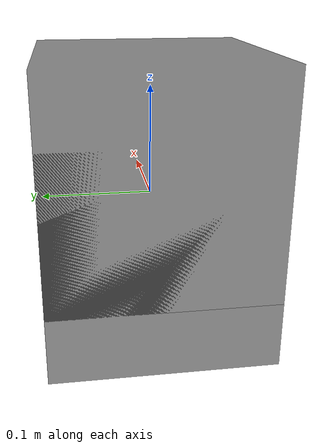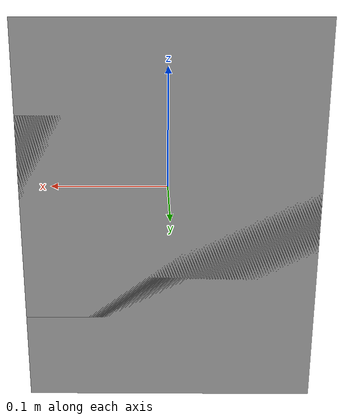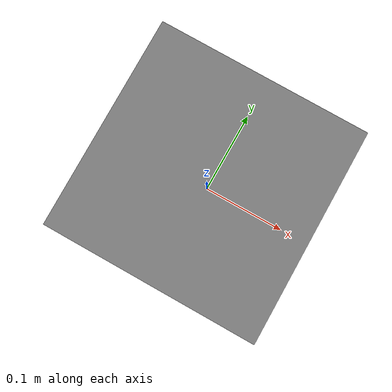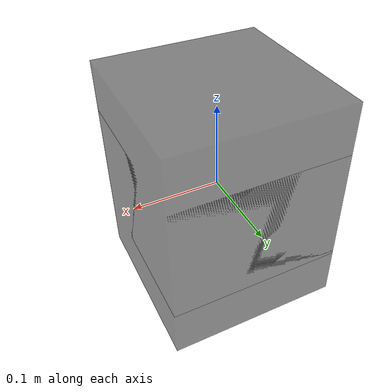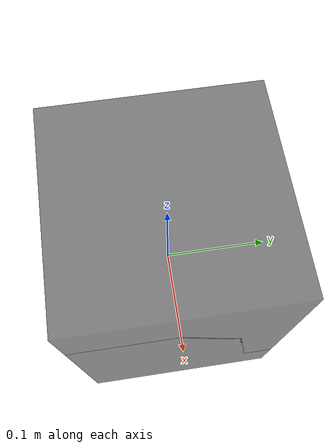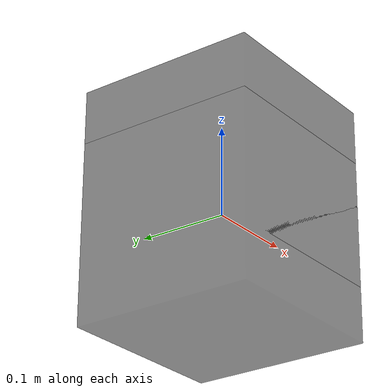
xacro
<?xml version="1.0"?>
<robot xmlns:xacro="http://www.ros.org/wiki/xacro" name="first_robot">
    <xacro:macro name="base_link" params="length radius">
    <link name="base_link">
        <visual>
            <origin xyz="0.0 0.0 0.0" rpy="0.0 0.0 0.0"/>
                <geometry>
                    <cylinder radius="${radius}" length="${length}"/>
                </geometry>
                <material name="white">
                    <color rgba="1.0 1.0 1.0 0.5"/>
                </material>
        </visual>
    </link>
    </xacro:macro>

    <xacro:macro name="imu_link" params="imu_name xyz">
    <link name="${imu_name}">
        <visual>
            <origin xyz="0.0 0.0 0.0" rpy="0.0 0.0 0.0"/>
                <geometry>
                    <box size="0.2 0.2 0.2"/>
                </geometry>
                <material name="black">
                    <color rgba="0.0 0.0 0.0 0.5"/>
                </material>
        </visual>
    </link>

    <joint name="imu_joint" type="fixed">
        <parent link="base_link" />
        <child link="${imu_name}" />
        <origin xyz="${xyz}" rpy="0.0 0.0 0.0"/>
    </joint>
    </xacro:macro>

    <xacro:base_link length="0.12" radius="0.1" />
    <xacro:imu_link imu_name="imu_up" xyz="0.0 0.0 0.03" />
    <xacro:imu_link imu_name="imu_down" xyz="0.0 0.0 -0.03" />

</robot>
